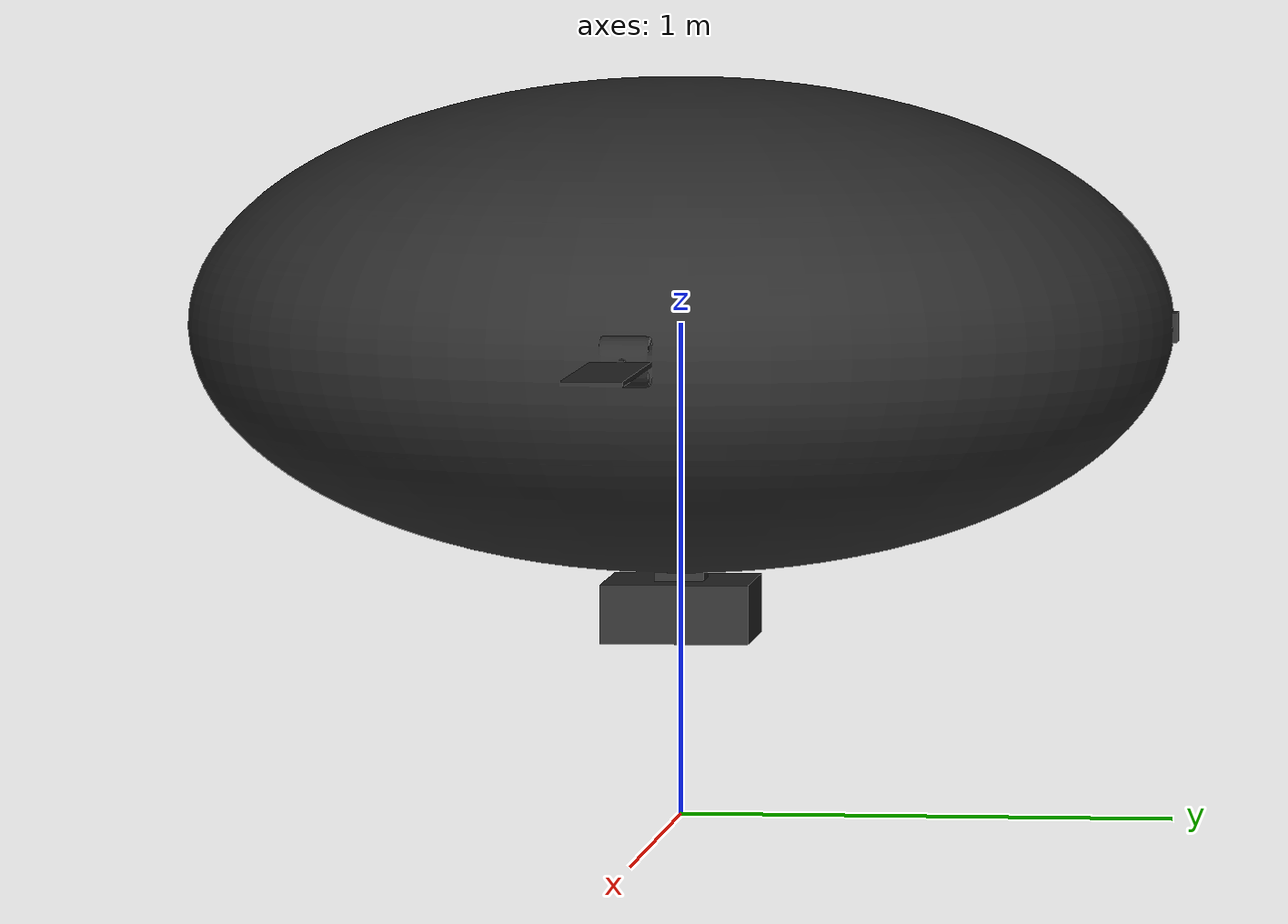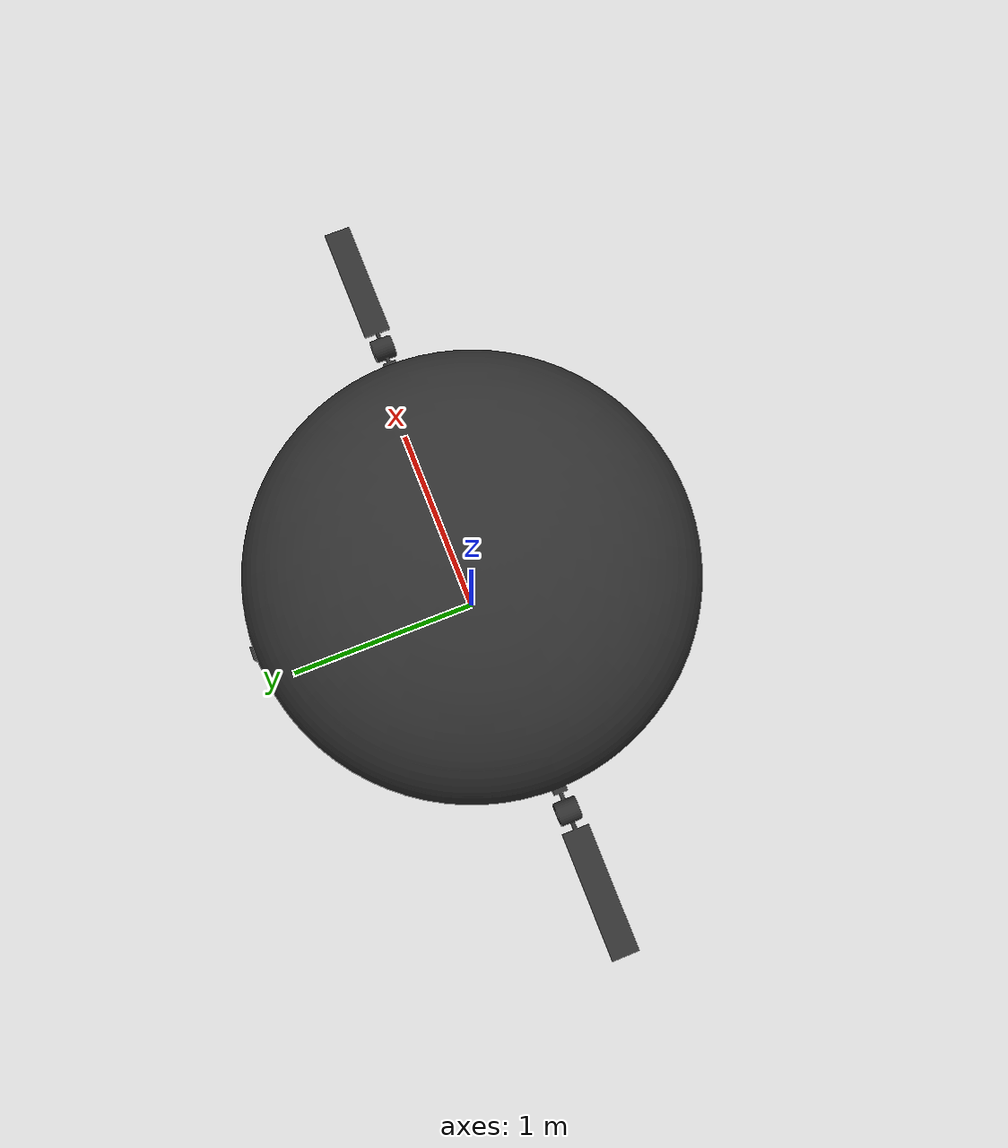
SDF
<?xml version="1.0" encoding="UTF-8"?>
<sdf version='1.9'>
  <model name='hb_1'>
    <pose>0 0 0.5 0 0 0</pose>
    <link name='base_link'>
      <pose>0 0 0 0 0 0</pose>
      <inertial>
        <pose>0 0 0 0 0 0</pose>
        <mass>1.5</mass>
        <inertia>
          <ixx>0.197563</ixx>
          <ixy>0</ixy>
          <ixz>0</ixz>
          <iyy>0.1458929</iyy>
          <iyz>0</iyz>
          <izz>0.1477</izz>
        </inertia>
      </inertial>
      <collision name='body_link_collision'>
        <pose>0 0 0 0 0 0</pose>
        <geometry>
          <box>
            <size>2 3.5 1.5</size>
          </box>
        </geometry>
      </collision>
      <visual name='base_link_visual'>
        <pose>0 0 0.5 0 0 0</pose>
        <geometry>
          <mesh>
            <scale>1 1 1</scale>
            <uri>model://hb_1/meshes/body.dae</uri>
          </mesh>
        </geometry>
        <material>
          <ambient>.175 .175 .175 1.0</ambient>
          <diffuse>.175 .175 .175 1.0</diffuse>
        </material>
      </visual>
      <gravity>1</gravity>
      <velocity_decay/>
      <self_collide>0</self_collide>
      <sensor name="imu_sensor" type="imu">
        <always_on>1</always_on>
        <update_rate>250</update_rate>
        <imu>
          <angular_velocity>
            <x>
              <noise type="gaussian">
                <mean>0</mean>
                <stddev>0.0003394</stddev>
                <dynamic_bias_stddev>3.8785e-05</dynamic_bias_stddev>
                <dynamic_bias_correlation_time>1000</dynamic_bias_correlation_time>
              </noise>
            </x>
            <y>
              <noise type="gaussian">
                <mean>0</mean>
                <stddev>0.0003394</stddev>
                <dynamic_bias_stddev>3.8785e-05</dynamic_bias_stddev>
                <dynamic_bias_correlation_time>1000</dynamic_bias_correlation_time>
              </noise>
            </y>
            <z>
              <noise type="gaussian">
                <mean>0</mean>
                <stddev>0.0003394</stddev>
                <dynamic_bias_stddev>3.8785e-05</dynamic_bias_stddev>
                <dynamic_bias_correlation_time>1000</dynamic_bias_correlation_time>
              </noise>
            </z>
          </angular_velocity>
          <linear_acceleration>
            <x>
              <noise type="gaussian">
                <mean>0</mean>
                <stddev>0.004</stddev>
                <dynamic_bias_stddev>0.006</dynamic_bias_stddev>
                <dynamic_bias_correlation_time>300</dynamic_bias_correlation_time>
              </noise>
            </x>
            <y>
              <noise type="gaussian">
                <mean>0</mean>
                <stddev>0.004</stddev>
                <dynamic_bias_stddev>0.006</dynamic_bias_stddev>
                <dynamic_bias_correlation_time>300</dynamic_bias_correlation_time>
              </noise>
            </y>
            <z>
              <noise type="gaussian">
                <mean>0</mean>
                <stddev>0.004</stddev>
                <dynamic_bias_stddev>0.006</dynamic_bias_stddev>
                <dynamic_bias_correlation_time>300</dynamic_bias_correlation_time>
              </noise>
            </z>
          </linear_acceleration>
        </imu>
      </sensor>
      <sensor name="navsat_sensor" type="navsat">
        <always_on>1</always_on>
        <update_rate>30</update_rate>
      </sensor>
      <sensor name="air_pressure_sensor" type="air_pressure">
        <always_on>1</always_on>
        <update_rate>50</update_rate>
        <air_pressure>
          <pressure>
            <noise type="gaussian">
              <mean>0</mean>
              <stddev>0.01</stddev>
            </noise>
          </pressure>
        </air_pressure>
      </sensor>
      <sensor name="magnetometer_sensor" type="magnetometer">
        <always_on>1</always_on>
        <update_rate>100</update_rate>
        <magnetometer>
          <!-- TODO: update to fix units and coordinate system when we move past Harmonic -->
          <!-- See https://github.com/gazebosim/gz-sim/pull/2460 -->
          <!-- 3mgauss RMS: NOTE: noise is in tesla but sensor reports data in gauss -->
          <!-- Noise modeled after IIS2MDC -->
          <x>
            <noise type="gaussian">
              <stddev>0.0001</stddev>
            </noise>
          </x>
          <y>
            <noise type="gaussian">
              <stddev>0.0001</stddev>
            </noise>
          </y>
          <z>
            <noise type="gaussian">
              <stddev>0.0001</stddev>
            </noise>
          </z>
        </magnetometer>
      </sensor>
    </link>
    <plugin filename="gz-sim-multicopter-motor-model-system" name="gz::sim::systems::MulticopterMotorModel">
      <jointName>rotor_0_joint</jointName>
      <linkName>rotor_0</linkName>
      <turningDirection>ccw</turningDirection>
      <timeConstantUp>0.0125</timeConstantUp>
      <timeConstantDown>0.025</timeConstantDown>
      <maxRotVelocity>1000.0</maxRotVelocity>
      <motorConstant>8.54858e-06</motorConstant>
      <momentConstant>0.016</momentConstant>
      <commandSubTopic>command/motor_speed</commandSubTopic>
      <motorNumber>0</motorNumber>
      <rotorDragCoefficient>8.06428e-05</rotorDragCoefficient>
      <rollingMomentCoefficient>1e-06</rollingMomentCoefficient>
      <rotorVelocitySlowdownSim>10</rotorVelocitySlowdownSim>
      <motorType>velocity</motorType>
    </plugin>
    <plugin filename="gz-sim-multicopter-motor-model-system" name="gz::sim::systems::MulticopterMotorModel">
      <jointName>rotor_1_joint</jointName>
      <linkName>rotor_1</linkName>
      <turningDirection>ccw</turningDirection>
      <timeConstantUp>0.0125</timeConstantUp>
      <timeConstantDown>0.025</timeConstantDown>
      <maxRotVelocity>1000.0</maxRotVelocity>
      <motorConstant>8.54858e-06</motorConstant>
      <momentConstant>0.016</momentConstant>
      <commandSubTopic>command/motor_speed</commandSubTopic>
      <motorNumber>1</motorNumber>
      <rotorDragCoefficient>8.06428e-05</rotorDragCoefficient>
      <rollingMomentCoefficient>1e-06</rollingMomentCoefficient>
      <rotorVelocitySlowdownSim>10</rotorVelocitySlowdownSim>
      <motorType>velocity</motorType>
    </plugin>
    <plugin filename="gz-sim-multicopter-motor-model-system" name="gz::sim::systems::MulticopterMotorModel">
      <jointName>rotor_2_joint</jointName>
      <linkName>rotor_2</linkName>
      <turningDirection>cw</turningDirection>
      <timeConstantUp>0.0125</timeConstantUp>
      <timeConstantDown>0.025</timeConstantDown>
      <maxRotVelocity>1000.0</maxRotVelocity>
      <motorConstant>8.54858e-06</motorConstant>
      <momentConstant>0.016</momentConstant>
      <commandSubTopic>command/motor_speed</commandSubTopic>
      <motorNumber>2</motorNumber>
      <rotorDragCoefficient>8.06428e-05</rotorDragCoefficient>
      <rollingMomentCoefficient>1e-06</rollingMomentCoefficient>
      <rotorVelocitySlowdownSim>10</rotorVelocitySlowdownSim>
      <motorType>velocity</motorType>
    </plugin>
    <plugin filename="gz-sim-multicopter-motor-model-system" name="gz::sim::systems::MulticopterMotorModel">
      <jointName>rotor_3_joint</jointName>
      <linkName>rotor_3</linkName>
      <turningDirection>cw</turningDirection>
      <timeConstantUp>0.0125</timeConstantUp>
      <timeConstantDown>0.025</timeConstantDown>
      <maxRotVelocity>1000.0</maxRotVelocity>
      <motorConstant>8.54858e-06</motorConstant>
      <momentConstant>0.016</momentConstant>
      <commandSubTopic>command/motor_speed</commandSubTopic>
      <motorNumber>3</motorNumber>
      <rotorDragCoefficient>8.06428e-05</rotorDragCoefficient>
      <rollingMomentCoefficient>1e-06</rollingMomentCoefficient>
      <rotorVelocitySlowdownSim>10</rotorVelocitySlowdownSim>
      <motorType>velocity</motorType>
    </plugin>
  </model>
</sdf>
